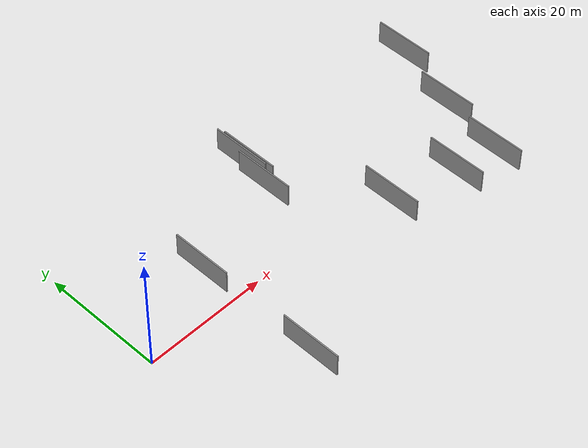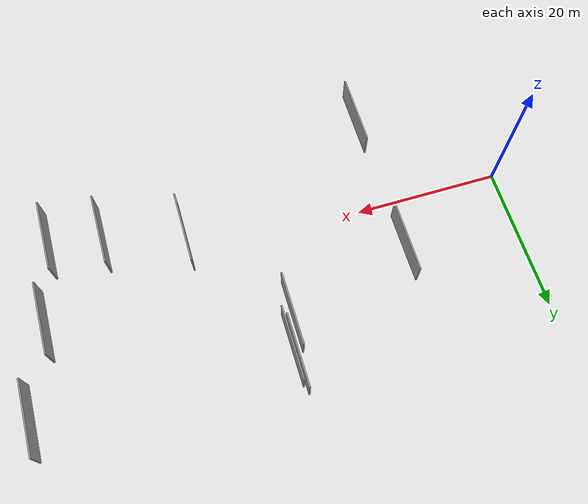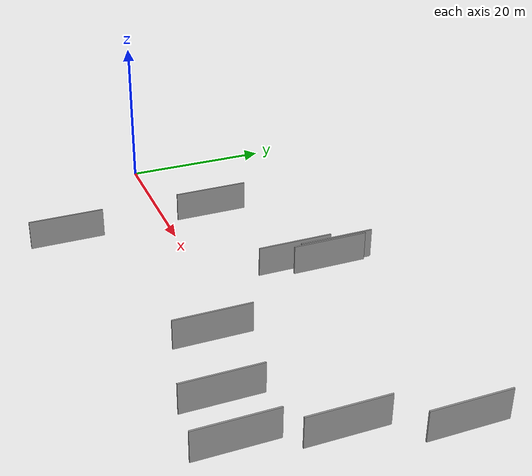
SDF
<sdf version="1.6">
 <world name="default">
  <scene>
   <sky><clouds><speed>12</speed></clouds></sky>
   <ambient>0.4 0.4 0.4 1</ambient>
   <background>0.7 0.7 0.7 1</background>
   <shadows>1</shadows>
  </scene>
  <gravity>0 0 -9.8066</gravity>
  <magnetic_field>6e-06 2.3e-05 -4.2e-05</magnetic_field>
  <physics default="0" name="default_physics" type="ode">
   <ode>
    <solver>
     <type>quick</type>
     <iters>10</iters>
     <sor>1.0</sor>
     <use_dynamic_moi_rescaling>0</use_dynamic_moi_rescaling>
    </solver>
    <constraints>
     <cfm>0</cfm>
     <erp>0.2</erp>
     <contact_max_correcting_vel>100</contact_max_correcting_vel>
     <contact_surface_layer>0.001</contact_surface_layer>
    </constraints>
   </ode>
   <max_step_size>0.004</max_step_size>
   <real_time_factor>1</real_time_factor>
   <real_time_update_rate>250</real_time_update_rate>
  </physics>
  <light name="sun" type="directional">
   <pose>0 0 10 0 0 0</pose>
   <diffuse>0.8 0.8 0.8 1</diffuse>
   <specular>0.2 0.2 0.2 1</specular>
   <attenuation>
    <range>1000</range>
    <constant>0.9</constant>
    <linear>0.01</linear>
    <quadratic>0.001</quadratic>
   </attenuation>
   <direction>-0.5 0.1 -0.9</direction>
  </light>
  <model name="grey_wall_1">
   <static>1</static>
   <pose>67.8300 16.2080 0.0 0.000000 0.000000 1.570796</pose>
   <link name="link">
    <pose>0 0 2.00 0 0 0</pose>
    <collision name="collision"><geometry><box><size>10.00 0.2 4.00</size></box></geometry></collision>
    <visual name="visual">
     <cast_shadows>0</cast_shadows>
     <geometry><box><size>10.00 0.2 4.00</size></box></geometry>
     <material>
      <script>
       <uri>model://grey_wall/materials/scripts</uri>
       <uri>model://grey_wall/materials/textures</uri>
       <name>vrc/grey_wall</name>
      </script>
     </material>
    </visual>
   </link>
  </model>
  <model name="grey_wall_2">
   <static>1</static>
   <pose>16.0429 -13.9363 0.0 0.000000 0.000000 1.570796</pose>
   <link name="link">
    <pose>0 0 2.00 0 0 0</pose>
    <collision name="collision"><geometry><box><size>10.00 0.2 4.00</size></box></geometry></collision>
    <visual name="visual">
     <cast_shadows>0</cast_shadows>
     <geometry><box><size>10.00 0.2 4.00</size></box></geometry>
     <material>
      <script>
       <uri>model://grey_wall/materials/scripts</uri>
       <uri>model://grey_wall/materials/textures</uri>
       <name>vrc/grey_wall</name>
      </script>
     </material>
    </visual>
   </link>
  </model>
  <model name="grey_wall_3">
   <static>1</static>
   <pose>34.3847 16.3863 0.0 0.000000 0.000000 1.570796</pose>
   <link name="link">
    <pose>0 0 2.00 0 0 0</pose>
    <collision name="collision"><geometry><box><size>10.00 0.2 4.00</size></box></geometry></collision>
    <visual name="visual">
     <cast_shadows>0</cast_shadows>
     <geometry><box><size>10.00 0.2 4.00</size></box></geometry>
     <material>
      <script>
       <uri>model://grey_wall/materials/scripts</uri>
       <uri>model://grey_wall/materials/textures</uri>
       <name>vrc/grey_wall</name>
      </script>
     </material>
    </visual>
   </link>
  </model>
  <model name="grey_wall_4">
   <static>1</static>
   <pose>15.7411 6.7529 0.0 0.000000 0.000000 1.570796</pose>
   <link name="link">
    <pose>0 0 2.00 0 0 0</pose>
    <collision name="collision"><geometry><box><size>10.00 0.2 4.00</size></box></geometry></collision>
    <visual name="visual">
     <cast_shadows>0</cast_shadows>
     <geometry><box><size>10.00 0.2 4.00</size></box></geometry>
     <material>
      <script>
       <uri>model://grey_wall/materials/scripts</uri>
       <uri>model://grey_wall/materials/textures</uri>
       <name>vrc/grey_wall</name>
      </script>
     </material>
    </visual>
   </link>
  </model>
  <model name="grey_wall_5">
   <static>1</static>
   <pose>33.1417 12.0423 0.0 0.000000 0.000000 1.570796</pose>
   <link name="link">
    <pose>0 0 2.00 0 0 0</pose>
    <collision name="collision"><geometry><box><size>10.00 0.2 4.00</size></box></geometry></collision>
    <visual name="visual">
     <cast_shadows>0</cast_shadows>
     <geometry><box><size>10.00 0.2 4.00</size></box></geometry>
     <material>
      <script>
       <uri>model://grey_wall/materials/scripts</uri>
       <uri>model://grey_wall/materials/textures</uri>
       <name>vrc/grey_wall</name>
      </script>
     </material>
    </visual>
   </link>
  </model>
  <model name="grey_wall_6">
   <static>1</static>
   <pose>43.9028 -3.0508 0.0 0.000000 0.000000 1.570796</pose>
   <link name="link">
    <pose>0 0 2.00 0 0 0</pose>
    <collision name="collision"><geometry><box><size>10.00 0.2 4.00</size></box></geometry></collision>
    <visual name="visual">
     <cast_shadows>0</cast_shadows>
     <geometry><box><size>10.00 0.2 4.00</size></box></geometry>
     <material>
      <script>
       <uri>model://grey_wall/materials/scripts</uri>
       <uri>model://grey_wall/materials/textures</uri>
       <name>vrc/grey_wall</name>
      </script>
     </material>
    </visual>
   </link>
  </model>
  <model name="grey_wall_7">
   <static>1</static>
   <pose>33.9962 17.5079 0.0 0.000000 0.000000 1.570796</pose>
   <link name="link">
    <pose>0 0 2.00 0 0 0</pose>
    <collision name="collision"><geometry><box><size>10.00 0.2 4.00</size></box></geometry></collision>
    <visual name="visual">
     <cast_shadows>0</cast_shadows>
     <geometry><box><size>10.00 0.2 4.00</size></box></geometry>
     <material>
      <script>
       <uri>model://grey_wall/materials/scripts</uri>
       <uri>model://grey_wall/materials/textures</uri>
       <name>vrc/grey_wall</name>
      </script>
     </material>
    </visual>
   </link>
  </model>
  <model name="grey_wall_8">
   <static>1</static>
   <pose>64.1467 4.2240 0.0 0.000000 0.000000 1.570796</pose>
   <link name="link">
    <pose>0 0 2.00 0 0 0</pose>
    <collision name="collision"><geometry><box><size>10.00 0.2 4.00</size></box></geometry></collision>
    <visual name="visual">
     <cast_shadows>0</cast_shadows>
     <geometry><box><size>10.00 0.2 4.00</size></box></geometry>
     <material>
      <script>
       <uri>model://grey_wall/materials/scripts</uri>
       <uri>model://grey_wall/materials/textures</uri>
       <name>vrc/grey_wall</name>
      </script>
     </material>
    </visual>
   </link>
  </model>
  <model name="grey_wall_9">
   <static>1</static>
   <pose>61.9205 -7.0767 0.0 0.000000 0.000000 1.570796</pose>
   <link name="link">
    <pose>0 0 2.00 0 0 0</pose>
    <collision name="collision"><geometry><box><size>10.00 0.2 4.00</size></box></geometry></collision>
    <visual name="visual">
     <cast_shadows>0</cast_shadows>
     <geometry><box><size>10.00 0.2 4.00</size></box></geometry>
     <material>
      <script>
       <uri>model://grey_wall/materials/scripts</uri>
       <uri>model://grey_wall/materials/textures</uri>
       <name>vrc/grey_wall</name>
      </script>
     </material>
    </visual>
   </link>
  </model>
  <model name="grey_wall_10">
   <static>1</static>
   <pose>54.7244 -5.9206 0.0 0.000000 0.000000 1.570796</pose>
   <link name="link">
    <pose>0 0 2.00 0 0 0</pose>
    <collision name="collision"><geometry><box><size>10.00 0.2 4.00</size></box></geometry></collision>
    <visual name="visual">
     <cast_shadows>0</cast_shadows>
     <geometry><box><size>10.00 0.2 4.00</size></box></geometry>
     <material>
      <script>
       <uri>model://grey_wall/materials/scripts</uri>
       <uri>model://grey_wall/materials/textures</uri>
       <name>vrc/grey_wall</name>
      </script>
     </material>
    </visual>
   </link>
  </model>
 </world>
</sdf>
